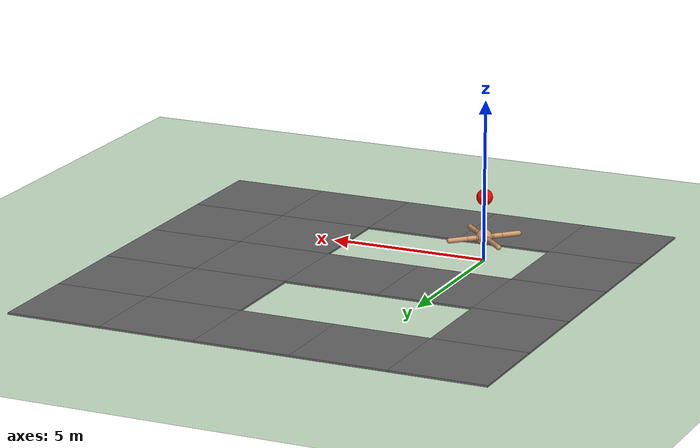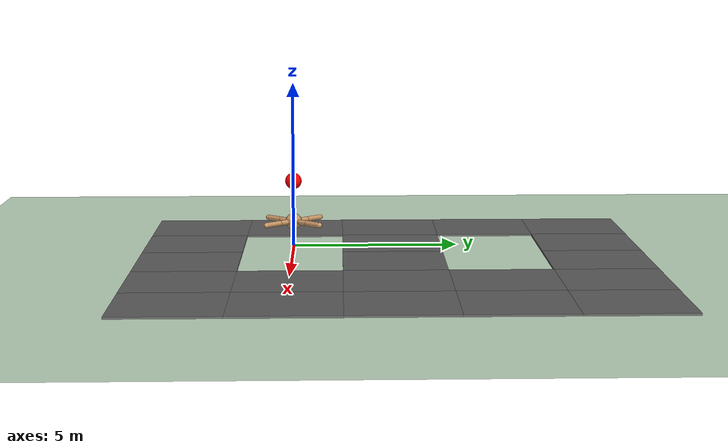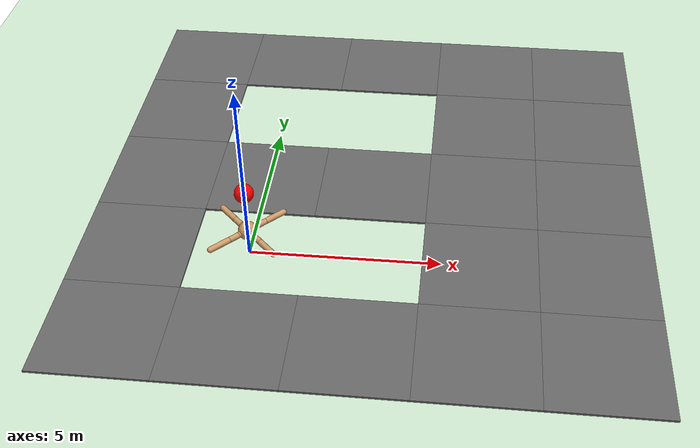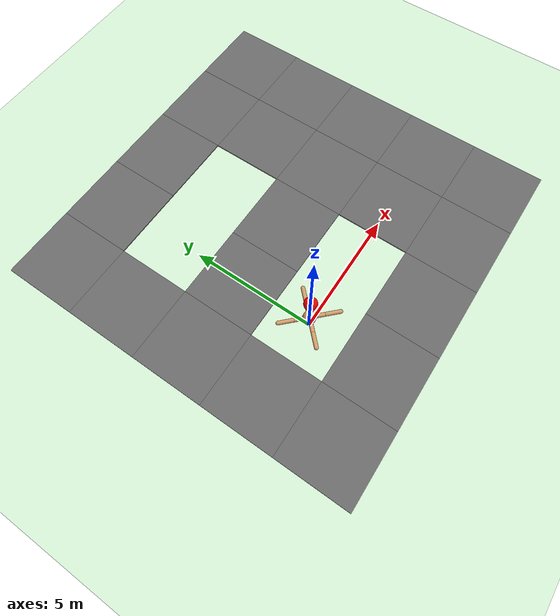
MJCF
<mujoco model="ant">
    <compiler angle="degree" coordinate="local" inertiafromgeom="true"/>
    <option integrator="RK4" timestep="0.01"/>
    <custom>
        <numeric data="0.0 0.0 0.55 1.0 0.0 0.0 0.0 0.0 1.0 0.0 -1.0 0.0 -1.0 0.0 1.0" name="init_qpos"/>
    </custom>
    <default>
        <joint armature="1" damping="1" limited="true"/>
        <geom conaffinity="0" condim="3" density="5.0" friction="1 0.5 0.5" margin="0.01" rgba="0.8 0.6 0.4 1"/>
    </default>
    <asset>
        <texture builtin="gradient" height="100" rgb1="1 1 1" rgb2="0 0 0" type="skybox" width="100"/>
        <texture builtin="flat" height="1278" mark="cross" markrgb="1 1 1" name="texgeom" random="0.01"
                 rgb1="0.8 0.6 0.4" rgb2="0.8 0.6 0.4" type="cube" width="127"/>
        <texture builtin="checker" height="100" name="texplane" rgb1="0 0 0" rgb2="0.8 0.8 0.8" type="2d" width="100"/>
        <material name="MatPlane" reflectance="0.5" shininess="1" specular="1" texrepeat="60 60" texture="texplane"/>
        <material name="geom" texture="texgeom" texuniform="true"/>
    </asset>
    <worldbody>
        <light cutoff="100" diffuse="1 1 1" dir="-0 0 -1.3" directional="true" exponent="1" pos="0 0 1.3"
               specular=".1 .1 .1"/>
        <geom conaffinity="1" condim="3" material="MatPlane" name="floor" pos="0 0 0" rgba="0.8 0.9 0.8 1"
              size="40 40 40" type="plane"/>
        <body name="torso" pos="0 0 0.75">
            <geom name="torso_geom" pos="0 0 0" size="0.25" type="sphere"/>
            <joint armature="0" damping="0" limited="false" margin="0.01" name="root" pos="0 0 0" type="free"/>
            <body name="front_left_leg" pos="0 0 0">
                <geom fromto="0.0 0.0 0.0 0.2 0.2 0.0" name="aux_1_geom" size="0.08" type="capsule"/>
                <body name="aux_1" pos="0.2 0.2 0">
                    <joint axis="0 0 1" name="hip_1" pos="0.0 0.0 0.0" range="-30 30" type="hinge"/>
                    <geom fromto="0.0 0.0 0.0 0.2 0.2 0.0" name="left_leg_geom" size="0.08" type="capsule"/>
                    <body pos="0.2 0.2 0">
                        <joint axis="-1 1 0" name="ankle_1" pos="0.0 0.0 0.0" range="30 70" type="hinge"/>
                        <geom fromto="0.0 0.0 0.0 0.4 0.4 0.0" name="left_ankle_geom" size="0.08" type="capsule"/>
                    </body>
                </body>
            </body>
            <body name="front_right_leg" pos="0 0 0">
                <geom fromto="0.0 0.0 0.0 -0.2 0.2 0.0" name="aux_2_geom" size="0.08" type="capsule"/>
                <body name="aux_2" pos="-0.2 0.2 0">
                    <joint axis="0 0 1" name="hip_2" pos="0.0 0.0 0.0" range="-30 30" type="hinge"/>
                    <geom fromto="0.0 0.0 0.0 -0.2 0.2 0.0" name="right_leg_geom" size="0.08" type="capsule"/>
                    <body pos="-0.2 0.2 0">
                        <joint axis="1 1 0" name="ankle_2" pos="0.0 0.0 0.0" range="-70 -30" type="hinge"/>
                        <geom fromto="0.0 0.0 0.0 -0.4 0.4 0.0" name="right_ankle_geom" size="0.08" type="capsule"/>
                    </body>
                </body>
            </body>
            <body name="back_leg" pos="0 0 0">
                <geom fromto="0.0 0.0 0.0 -0.2 -0.2 0.0" name="aux_3_geom" size="0.08" type="capsule"/>
                <body name="aux_3" pos="-0.2 -0.2 0">
                    <joint axis="0 0 1" name="hip_3" pos="0.0 0.0 0.0" range="-30 30" type="hinge"/>
                    <geom fromto="0.0 0.0 0.0 -0.2 -0.2 0.0" name="back_leg_geom" size="0.08" type="capsule"/>
                    <body pos="-0.2 -0.2 0">
                        <joint axis="-1 1 0" name="ankle_3" pos="0.0 0.0 0.0" range="-70 -30" type="hinge"/>
                        <geom fromto="0.0 0.0 0.0 -0.4 -0.4 0.0" name="third_ankle_geom" size="0.08" type="capsule"/>
                    </body>
                </body>
            </body>
            <body name="right_back_leg" pos="0 0 0">
                <geom fromto="0.0 0.0 0.0 0.2 -0.2 0.0" name="aux_4_geom" size="0.08" type="capsule"/>
                <body name="aux_4" pos="0.2 -0.2 0">
                    <joint axis="0 0 1" name="hip_4" pos="0.0 0.0 0.0" range="-30 30" type="hinge"/>
                    <geom fromto="0.0 0.0 0.0 0.2 -0.2 0.0" name="rightback_leg_geom" size="0.08" type="capsule"/>
                    <body pos="0.2 -0.2 0">
                        <joint axis="1 1 0" name="ankle_4" pos="0.0 0.0 0.0" range="30 70" type="hinge"/>
                        <geom fromto="0.0 0.0 0.0 0.4 -0.4 0.0" name="fourth_ankle_geom" size="0.08" type="capsule"/>
                    </body>
                </body>
            </body>
        </body>
        <geom conaffinity="1" contype="1" material="" name="block_0_0" pos="-3.000000 -3.000000 0.030000"
              rgba="0.4 0.4 0.4 1" size="1.500000 1.500000 0.030000" type="box"/>
        <geom conaffinity="1" contype="1" material="" name="block_0_1" pos="0.000000 -3.000000 0.030000"
              rgba="0.4 0.4 0.4 1" size="1.500000 1.500000 0.030000" type="box"/>
        <geom conaffinity="1" contype="1" material="" name="block_0_2" pos="3.000000 -3.000000 0.030000"
              rgba="0.4 0.4 0.4 1" size="1.500000 1.500000 0.030000" type="box"/>
        <geom conaffinity="1" contype="1" material="" name="block_0_3" pos="6.000000 -3.000000 0.030000"
              rgba="0.4 0.4 0.4 1" size="1.500000 1.500000 0.030000" type="box"/>
        <geom conaffinity="1" contype="1" material="" name="block_0_4" pos="9.000000 -3.000000 0.030000"
              rgba="0.4 0.4 0.4 1" size="1.500000 1.500000 0.030000" type="box"/>
        <geom conaffinity="1" contype="1" material="" name="block_1_0" pos="-3.000000 0.000000 0.030000"
              rgba="0.4 0.4 0.4 1" size="1.500000 1.500000 0.030000" type="box"/>
        <geom conaffinity="1" contype="1" material="" name="block_1_3" pos="6.000000 0.000000 0.030000"
              rgba="0.4 0.4 0.4 1" size="1.500000 1.500000 0.030000" type="box"/>
        <geom conaffinity="1" contype="1" material="" name="block_1_4" pos="9.000000 0.000000 0.030000"
              rgba="0.4 0.4 0.4 1" size="1.500000 1.500000 0.030000" type="box"/>
        <geom conaffinity="1" contype="1" material="" name="block_2_0" pos="-3.000000 3.000000 0.030000"
              rgba="0.4 0.4 0.4 1" size="1.500000 1.500000 0.030000" type="box"/>
        <geom conaffinity="1" contype="1" material="" name="block_2_1" pos="0.000000 3.000000 0.030000"
              rgba="0.4 0.4 0.4 1" size="1.500000 1.500000 0.030000" type="box"/>
        <geom conaffinity="1" contype="1" material="" name="block_2_2" pos="3.000000 3.000000 0.030000"
              rgba="0.4 0.4 0.4 1" size="1.500000 1.500000 0.030000" type="box"/>
        <geom conaffinity="1" contype="1" material="" name="block_2_3" pos="6.000000 3.000000 0.030000"
              rgba="0.4 0.4 0.4 1" size="1.500000 1.500000 0.030000" type="box"/>
        <geom conaffinity="1" contype="1" material="" name="block_2_4" pos="9.000000 3.000000 0.030000"
              rgba="0.4 0.4 0.4 1" size="1.500000 1.500000 0.030000" type="box"/>
        <geom conaffinity="1" contype="1" material="" name="block_3_0" pos="-3.000000 6.000000 0.030000"
              rgba="0.4 0.4 0.4 1" size="1.500000 1.500000 0.030000" type="box"/>
        <geom conaffinity="1" contype="1" material="" name="block_3_3" pos="6.000000 6.000000 0.030000"
              rgba="0.4 0.4 0.4 1" size="1.500000 1.500000 0.030000" type="box"/>
        <geom conaffinity="1" contype="1" material="" name="block_3_4" pos="9.000000 6.000000 0.030000"
              rgba="0.4 0.4 0.4 1" size="1.500000 1.500000 0.030000" type="box"/>
        <geom conaffinity="1" contype="1" material="" name="block_4_0" pos="-3.000000 9.000000 0.030000"
              rgba="0.4 0.4 0.4 1" size="1.500000 1.500000 0.030000" type="box"/>
        <geom conaffinity="1" contype="1" material="" name="block_4_1" pos="0.000000 9.000000 0.030000"
              rgba="0.4 0.4 0.4 1" size="1.500000 1.500000 0.030000" type="box"/>
        <geom conaffinity="1" contype="1" material="" name="block_4_2" pos="3.000000 9.000000 0.030000"
              rgba="0.4 0.4 0.4 1" size="1.500000 1.500000 0.030000" type="box"/>
        <geom conaffinity="1" contype="1" material="" name="block_4_3" pos="6.000000 9.000000 0.030000"
              rgba="0.4 0.4 0.4 1" size="1.500000 1.500000 0.030000" type="box"/>
        <geom conaffinity="1" contype="1" material="" name="block_4_4" pos="9.000000 9.000000 0.030000"
              rgba="0.4 0.4 0.4 1" size="1.500000 1.500000 0.030000" type="box"/>
        <body pos="0.000000 0.000000 2.000000">
            <joint type="free"/>
            <geom name="ball" rgba="1.0 0.0 0.0 1" size="0.25" type="sphere"/>
        </body>
    </worldbody>
    <actuator>
        <motor ctrllimited="true" ctrlrange="-1.0 1.0" gear="150" joint="hip_4"/>
        <motor ctrllimited="true" ctrlrange="-1.0 1.0" gear="150" joint="ankle_4"/>
        <motor ctrllimited="true" ctrlrange="-1.0 1.0" gear="150" joint="hip_1"/>
        <motor ctrllimited="true" ctrlrange="-1.0 1.0" gear="150" joint="ankle_1"/>
        <motor ctrllimited="true" ctrlrange="-1.0 1.0" gear="150" joint="hip_2"/>
        <motor ctrllimited="true" ctrlrange="-1.0 1.0" gear="150" joint="ankle_2"/>
        <motor ctrllimited="true" ctrlrange="-1.0 1.0" gear="150" joint="hip_3"/>
        <motor ctrllimited="true" ctrlrange="-1.0 1.0" gear="150" joint="ankle_3"/>
    </actuator>
</mujoco>
